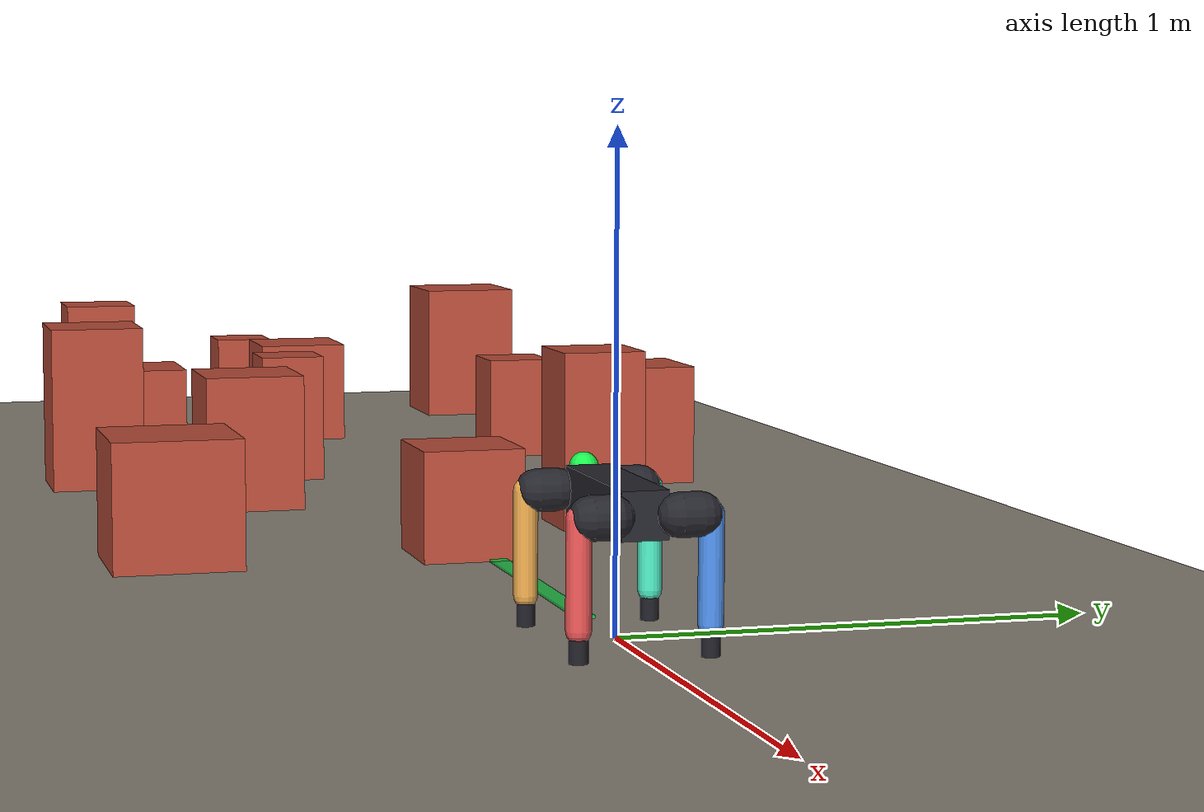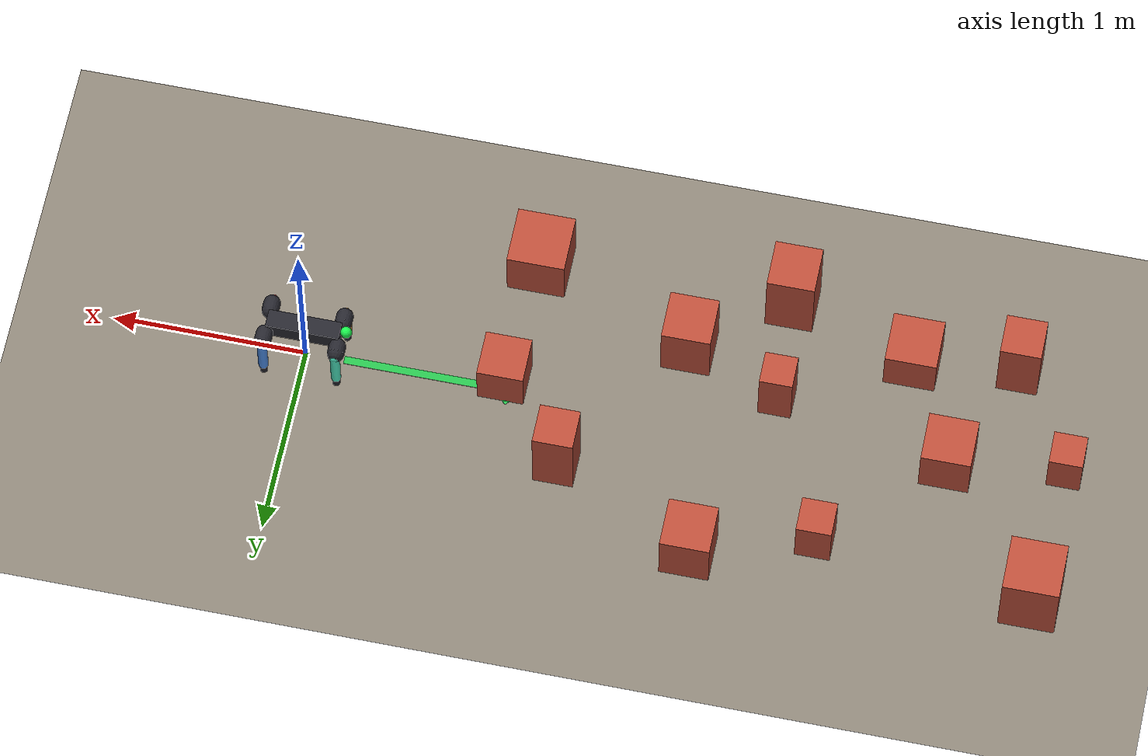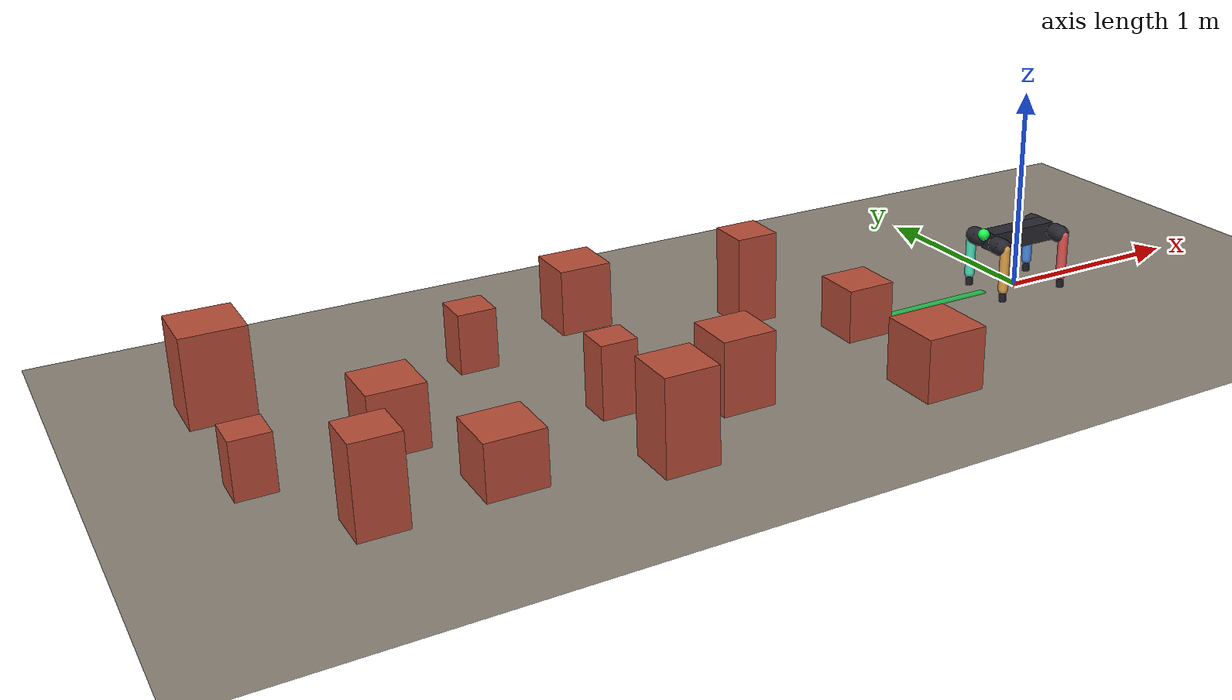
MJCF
<mujoco model="go1">

  <compiler angle="radian" autolimits="true" meshdir="/Users/akshparekh/Documents/cadenza/models/go1" texturedir="/Users/akshparekh/Documents/cadenza/models/go1" />
  <option gravity="0 0 -9.81" timestep="0.002" iterations="50" tolerance="1e-10" cone="elliptic" impratio="100" />

  <default>

    <joint damping="2.0" frictionloss="0.2" armature="0.01" />
    <geom contype="1" conaffinity="1" condim="3" friction="0.6 0.02 0.001" solref="0.005 1" solimp="0.98 0.99 0.001" />
    <position kp="300" ctrlrange="-3.14 3.14" forcelimited="true" forcerange="-33.5 33.5" />

    <default class="hip_joint">
      <joint damping="1.0" frictionloss="0.2" armature="0.01" />
    </default>

    <default class="foot">
      <geom condim="6" friction="0.8 0.02 0.01" solimp="0.015 1 0.023" solref="0.005 1" />
    </default>
  </default>

  <asset>

    <texture name="sky" type="skybox" builtin="gradient" rgb1="0.45 0.60 0.85" rgb2="0.75 0.85 0.95" width="512" height="512" mark="random" markrgb="1 1 1" random="0.01" />

    <texture name="ground_tex" type="2d" builtin="flat" rgb1="0.72 0.70 0.66" rgb2="0.68 0.66 0.62" width="512" height="512" mark="random" markrgb="0.65 0.63 0.60" random="0.05" />
    <material name="floor_mat" texture="ground_tex" texrepeat="12 12" texuniform="true" reflectance="0.02" rgba="0.75 0.73 0.70 1" />
    <material name="body_mat" rgba="0.15 0.15 0.18 1" reflectance="0.05" />
    <material name="leg_mat" rgba="0.12 0.12 0.15 1" reflectance="0.03" />
  </asset>

  <worldbody>
    <light name="sun" pos="5 3 12" dir="-0.3 -0.2 -1" diffuse="1.2 1.15 1.0" specular="0.5 0.5 0.4" castshadow="true" />
    <light name="ambient" pos="0 0 10" dir="0 0 -1" diffuse="0.35 0.38 0.45" specular="0 0 0" castshadow="false" />
    <light name="fill" pos="-5 -3 6" dir="0.3 0.2 -1" diffuse="0.25 0.25 0.30" castshadow="false" />

    <geom name="floor" type="plane" size="30 30 0.1" material="floor_mat" condim="6" friction="0.8 0.02 0.01" />

    <geom name="fwd_arrow_shaft" type="box" size="0.4 0.02 0.003" pos="-0.6 0 0.003" rgba="0.1 0.85 0.3 0.8" contype="0" conaffinity="0" />
    <geom name="fwd_arrow_head" type="box" size="0.06 0.06 0.003" pos="-1.05 0 0.003" euler="0 0 0.785" rgba="0.1 0.85 0.3 0.8" contype="0" conaffinity="0" />

    <body name="trunk" pos="0 0 0.27">
      <freejoint name="root" />
      <geom name="trunk" type="box" size="0.1881 0.0475 0.048" mass="9.041" material="body_mat" />
      <site name="imu" pos="0 0 0" size="0.005" />

      <geom name="head_marker" type="sphere" size="0.03" pos="-0.22 0 0.04" rgba="0.1 0.95 0.3 1" contype="0" conaffinity="0" mass="0.001" />

      <body name="FL_hip" pos="0.1881 0.0472 0">
        <joint name="FL_hip_joint" type="hinge" axis="1 0 0" range="-0.863 0.863" class="hip_joint" />
        <geom type="capsule" size="0.044 0.020" pos="0 0.040 0" euler="1.5708 0 0" mass="0.591" material="body_mat" />
        <body name="FL_thigh" pos="0 0.0838 0">
          <joint name="FL_thigh_joint" type="hinge" axis="0 -1 0" range="-0.686 4.501" />
          <geom type="capsule" size="0.025" fromto="0 0 0 0 0 -0.213" mass="0.921" material="leg_mat" rgba="0.30 0.55 0.90 1" />
          <body name="FL_calf" pos="0 0 -0.213">
            <joint name="FL_calf_joint" type="hinge" axis="0 -1 0" range="-2.818 -0.888" />
            <geom type="capsule" size="0.019" fromto="0 0 0 0 0 -0.213" mass="0.135" material="leg_mat" />
            <body name="FL_foot" pos="0 0 -0.213">
              <geom name="FL_foot_geom" type="sphere" size="0.0165" mass="0.06" rgba="0.30 0.55 0.90 1" class="foot" />
            </body>
          </body>
        </body>
      </body>

      <body name="FR_hip" pos="0.1881 -0.0472 0">
        <joint name="FR_hip_joint" type="hinge" axis="-1 0 0" range="-0.863 0.863" class="hip_joint" />
        <geom type="capsule" size="0.044 0.020" pos="0 -0.040 0" euler="1.5708 0 0" mass="0.591" material="body_mat" />
        <body name="FR_thigh" pos="0 -0.0838 0">
          <joint name="FR_thigh_joint" type="hinge" axis="0 -1 0" range="-0.686 4.501" />
          <geom type="capsule" size="0.025" fromto="0 0 0 0 0 -0.213" mass="0.921" material="leg_mat" rgba="0.90 0.33 0.33 1" />
          <body name="FR_calf" pos="0 0 -0.213">
            <joint name="FR_calf_joint" type="hinge" axis="0 -1 0" range="-2.818 -0.888" />
            <geom type="capsule" size="0.019" fromto="0 0 0 0 0 -0.213" mass="0.135" material="leg_mat" />
            <body name="FR_foot" pos="0 0 -0.213">
              <geom name="FR_foot_geom" type="sphere" size="0.0165" mass="0.06" rgba="0.90 0.33 0.33 1" class="foot" />
            </body>
          </body>
        </body>
      </body>

      <body name="RL_hip" pos="-0.1881 0.0472 0">
        <joint name="RL_hip_joint" type="hinge" axis="1 0 0" range="-0.863 0.863" class="hip_joint" />
        <geom type="capsule" size="0.044 0.020" pos="0 0.040 0" euler="1.5708 0 0" mass="0.591" material="body_mat" />
        <body name="RL_thigh" pos="0 0.0838 0">
          <joint name="RL_thigh_joint" type="hinge" axis="0 -1 0" range="-0.686 4.501" />
          <geom type="capsule" size="0.025" fromto="0 0 0 0 0 -0.213" mass="0.921" material="leg_mat" rgba="0.30 0.90 0.75 1" />
          <body name="RL_calf" pos="0 0 -0.213">
            <joint name="RL_calf_joint" type="hinge" axis="0 -1 0" range="-2.818 -0.888" />
            <geom type="capsule" size="0.019" fromto="0 0 0 0 0 -0.213" mass="0.135" material="leg_mat" />
            <body name="RL_foot" pos="0 0 -0.213">
              <geom name="RL_foot_geom" type="sphere" size="0.0165" mass="0.06" rgba="0.30 0.90 0.75 1" class="foot" />
            </body>
          </body>
        </body>
      </body>

      <body name="RR_hip" pos="-0.1881 -0.0472 0">
        <joint name="RR_hip_joint" type="hinge" axis="-1 0 0" range="-0.863 0.863" class="hip_joint" />
        <geom type="capsule" size="0.044 0.020" pos="0 -0.040 0" euler="1.5708 0 0" mass="0.591" material="body_mat" />
        <body name="RR_thigh" pos="0 -0.0838 0">
          <joint name="RR_thigh_joint" type="hinge" axis="0 -1 0" range="-0.686 4.501" />
          <geom type="capsule" size="0.025" fromto="0 0 0 0 0 -0.213" mass="0.921" material="leg_mat" rgba="0.90 0.65 0.30 1" />
          <body name="RR_calf" pos="0 0 -0.213">
            <joint name="RR_calf_joint" type="hinge" axis="0 -1 0" range="-2.818 -0.888" />
            <geom type="capsule" size="0.019" fromto="0 0 0 0 0 -0.213" mass="0.135" material="leg_mat" />
            <body name="RR_foot" pos="0 0 -0.213">
              <geom name="RR_foot_geom" type="sphere" size="0.0165" mass="0.06" rgba="0.90 0.65 0.30 1" class="foot" />
            </body>
          </body>
        </body>
      </body>

    <camera name="forward" pos="-0.22 0 0.06" euler="1.5708 -1.5708 0" fovy="70" /></body>
  <geom name="cadenza_obs_0" type="box" size="0.132075 0.132075 0.127244" rgba="0.72 0.3 0.22 1" pos="-3.0285 -0.558641 0.127244" /><geom name="cadenza_obs_1" type="box" size="0.0846399 0.0846399 0.170744" rgba="0.72 0.3 0.22 1" pos="-2.39235 -0.214898 0.170744" /><geom name="cadenza_obs_2" type="box" size="0.0855884 0.0855884 0.129071" rgba="0.72 0.3 0.22 1" pos="-3.88751 -0.106167 0.129071" /><geom name="cadenza_obs_3" type="box" size="0.0899042 0.0899042 0.142324" rgba="0.72 0.3 0.22 1" pos="-2.72644 0.522963 0.142324" /><geom name="cadenza_obs_4" type="box" size="0.126168 0.126168 0.159668" rgba="0.72 0.3 0.22 1" pos="-2.1177 0.716334 0.159668" /><geom name="cadenza_obs_5" type="box" size="0.148677 0.148677 0.148961" rgba="0.72 0.3 0.22 1" pos="-1.07123 -0.725468 0.148961" /><geom name="cadenza_obs_6" type="box" size="0.104679 0.104679 0.201613" rgba="0.72 0.3 0.22 1" pos="-3.56723 -0.611532 0.201613" /><geom name="cadenza_obs_7" type="box" size="0.125954 0.125954 0.17252" rgba="0.72 0.3 0.22 1" pos="-1.90302 -0.409446 0.17252" /><geom name="cadenza_obs_8" type="box" size="0.103035 0.103035 0.218017" rgba="0.72 0.3 0.22 1" pos="-1.37459 0.367112 0.218017" /><geom name="cadenza_obs_9" type="box" size="0.12713 0.12713 0.146275" rgba="0.72 0.3 0.22 1" pos="-3.29999 -0.0240596 0.146275" /><geom name="cadenza_obs_10" type="box" size="0.142398 0.142398 0.207451" rgba="0.72 0.3 0.22 1" pos="-3.83802 0.639253 0.207451" /><geom name="cadenza_obs_11" type="box" size="0.118707 0.118707 0.128588" rgba="0.72 0.3 0.22 1" pos="-1.02069 -0.0544169 0.128588" /><geom name="cadenza_obs_12" type="box" size="0.122249 0.122249 0.21785" rgba="0.72 0.3 0.22 1" pos="-2.37048 -0.756732 0.21785" /></worldbody>

  <actuator>

    <position name="FL_hip" joint="FL_hip_joint" ctrlrange="-0.80 0.80" forcelimited="true" forcerange="-23.7 23.7" />
    <position name="FL_thigh" joint="FL_thigh_joint" ctrlrange="-0.50 2.50" forcelimited="true" forcerange="-23.7 23.7" />
    <position name="FL_calf" joint="FL_calf_joint" ctrlrange="-2.75 -0.60" forcelimited="true" forcerange="-35.55 35.55" />
    <position name="FR_hip" joint="FR_hip_joint" ctrlrange="-0.80 0.80" forcelimited="true" forcerange="-23.7 23.7" />
    <position name="FR_thigh" joint="FR_thigh_joint" ctrlrange="-0.50 2.50" forcelimited="true" forcerange="-23.7 23.7" />
    <position name="FR_calf" joint="FR_calf_joint" ctrlrange="-2.75 -0.60" forcelimited="true" forcerange="-35.55 35.55" />
    <position name="RL_hip" joint="RL_hip_joint" ctrlrange="-0.80 0.80" forcelimited="true" forcerange="-23.7 23.7" />
    <position name="RL_thigh" joint="RL_thigh_joint" ctrlrange="-0.50 2.50" forcelimited="true" forcerange="-23.7 23.7" />
    <position name="RL_calf" joint="RL_calf_joint" ctrlrange="-2.75 -0.60" forcelimited="true" forcerange="-35.55 35.55" />
    <position name="RR_hip" joint="RR_hip_joint" ctrlrange="-0.80 0.80" forcelimited="true" forcerange="-23.7 23.7" />
    <position name="RR_thigh" joint="RR_thigh_joint" ctrlrange="-0.50 2.50" forcelimited="true" forcerange="-23.7 23.7" />
    <position name="RR_calf" joint="RR_calf_joint" ctrlrange="-2.75 -0.60" forcelimited="true" forcerange="-35.55 35.55" />
  </actuator>

  <keyframe>
    <key name="home" qpos="0 0 0.27 1 0 0 0                            0 0.9 -1.8  0 0.9 -1.8                            0 0.9 -1.8  0 0.9 -1.8" />
  </keyframe>

</mujoco>
